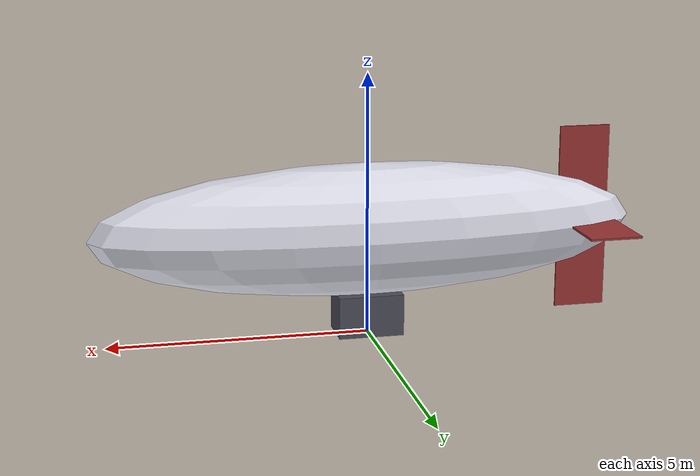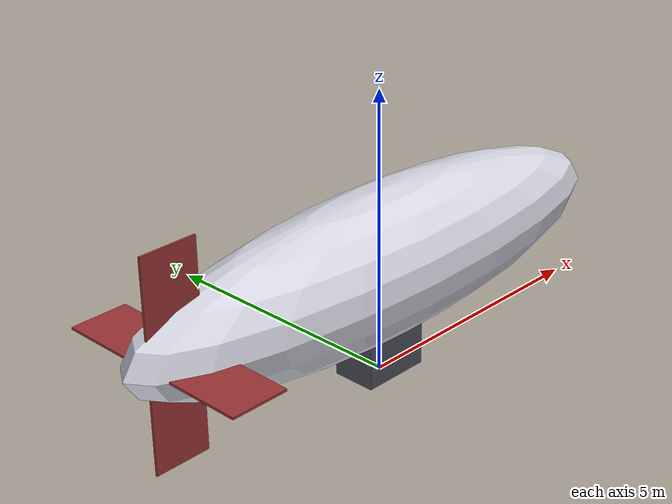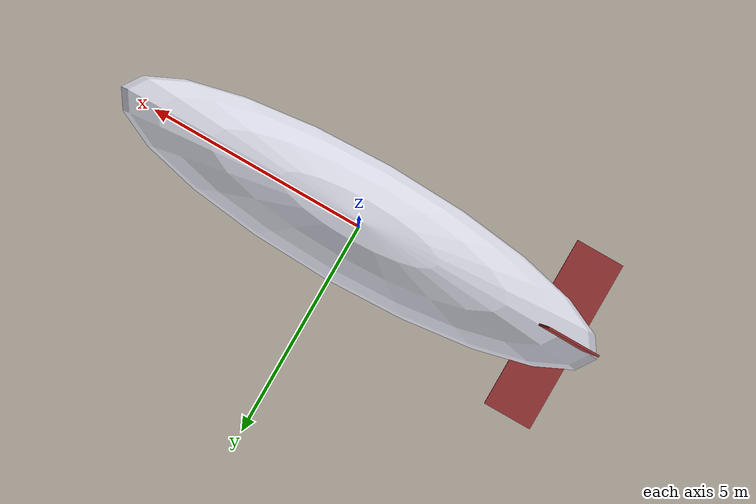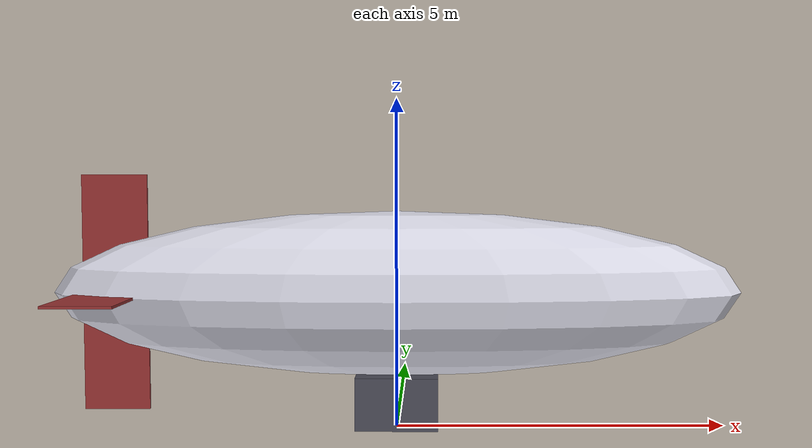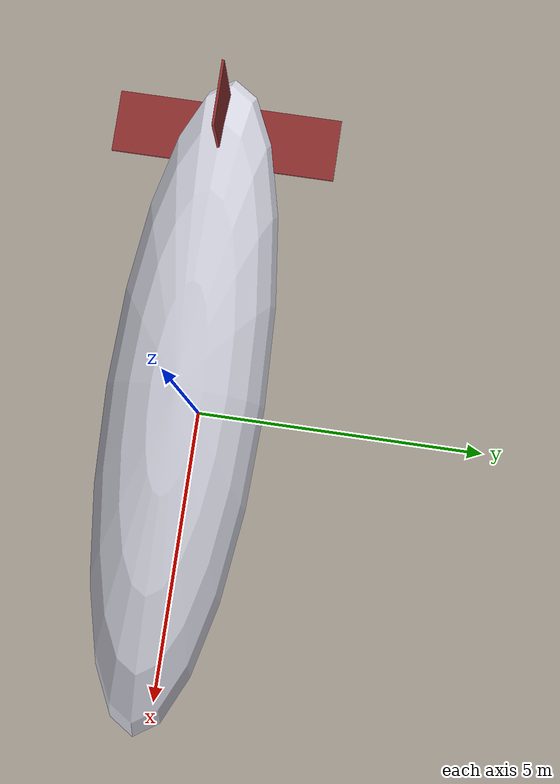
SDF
<?xml version="1.0" encoding="UTF-8"?>
<sdf version="1.10">
  <model name="airship_base">
    <self_collide>false</self_collide>
    <static>false</static>
    <link name="base_link">
      <pose>0 0 0 0 0 0</pose>
      <inertial>
        <!-- Hull as a solid ellipsoid plus gondola box, parallel-axis about
             the combined CoM; pods/props carry their own mass in the
             wrapper, on the CoM plane. -->
        <pose>0 0 0.8125 0 0 0</pose>
        <mass>48.0</mass>
        <inertia>
          <ixx>35.8425</ixx>
          <iyy>101.01</iyy>
          <izz>76.5075</izz>
          <ixy>0</ixy>
          <ixz>0</ixz>
          <iyz>0</iyz>
        </inertia>
      </inertial>
      <!-- Buoyancy volume 39.2 m^3 -->
      <collision name="hull_collision">
        <pose>0 0 2.05 0 0 0</pose>
        <geometry>
          <box>
            <size>9.8 2 2</size>
          </box>
        </geometry>
      </collision>
      <!-- Ground contact; buoyancy volume 0.8 m^3 -->
      <collision name="gondola_collision">
        <pose>0 0 0.4 0 0 0</pose>
        <geometry>
          <box>
            <size>1.25 0.8 0.8</size>
          </box>
        </geometry>
        <surface>
          <contact>
            <ode>
              <min_depth>0.001</min_depth>
              <max_vel>0</max_vel>
            </ode>
          </contact>
          <friction>
            <ode />
          </friction>
        </surface>
      </collision>
      <visual name="hull_visual">
        <pose>0 0 2.05 0 0 0</pose>
        <geometry>
          <ellipsoid>
            <radii>5.25 1.25 1.25</radii>
          </ellipsoid>
        </geometry>
        <material>
          <ambient>0.85 0.85 0.9 1</ambient>
          <diffuse>0.85 0.85 0.9 1</diffuse>
          <specular>0.3 0.3 0.3 1</specular>
        </material>
      </visual>
      <visual name="gondola_visual">
        <pose>0 0 0.4 0 0 0</pose>
        <geometry>
          <box>
            <size>1.25 0.8 0.8</size>
          </box>
        </geometry>
        <material>
          <ambient>0.3 0.3 0.35 1</ambient>
          <diffuse>0.3 0.3 0.35 1</diffuse>
          <specular>0.2 0.2 0.2 1</specular>
        </material>
      </visual>
      <!-- Cruciform tail, visual only: no collision and no lift-drag, so it
           adds no weathercock stiffness, in the _aero variant either -->
      <visual name="fin_horizontal_visual">
        <pose>-4.3 0 2.05 0 0 0</pose>
        <geometry>
          <box>
            <size>1.0 3.6 0.04</size>
          </box>
        </geometry>
        <material>
          <ambient>0.6 0.2 0.2 1</ambient>
          <diffuse>0.6 0.2 0.2 1</diffuse>
        </material>
      </visual>
      <visual name="fin_vertical_visual">
        <pose>-4.3 0 2.05 0 0 0</pose>
        <geometry>
          <box>
            <size>1.0 0.04 3.6</size>
          </box>
        </geometry>
        <material>
          <ambient>0.6 0.2 0.2 1</ambient>
          <diffuse>0.6 0.2 0.2 1</diffuse>
        </material>
      </visual>
      <sensor name="air_pressure_sensor" type="air_pressure">
        <gz_frame_id>base_link</gz_frame_id>
        <always_on>1</always_on>
        <update_rate>50</update_rate>
        <air_pressure>
          <!-- Noise modeled after BMP390 -->
          <pressure>
            <noise type="gaussian">
              <mean>0</mean>
              <stddev>3</stddev>
            </noise>
          </pressure>
        </air_pressure>
      </sensor>
      <sensor name="magnetometer_sensor" type="magnetometer">
        <gz_frame_id>base_link</gz_frame_id>
        <always_on>1</always_on>
        <update_rate>100</update_rate>
        <magnetometer>
          <!-- TODO: update to fix units and coordinate system when we move past Harmonic -->
          <!-- See https://github.com/gazebosim/gz-sim/pull/2460 -->
          <!-- 3mgauss RMS: NOTE: noise is in tesla but sensor reports data in gauss -->
          <!-- Noise modeled after IIS2MDC -->
          <x>
            <noise type="gaussian">
              <stddev>0.0001</stddev>
            </noise>
          </x>
          <y>
            <noise type="gaussian">
              <stddev>0.0001</stddev>
            </noise>
          </y>
          <z>
            <noise type="gaussian">
              <stddev>0.0001</stddev>
            </noise>
          </z>
        </magnetometer>
      </sensor>
      <sensor name="imu_sensor" type="imu">
        <gz_frame_id>base_link</gz_frame_id>
        <always_on>1</always_on>
        <update_rate>250</update_rate>
        <imu>
          <angular_velocity>
            <!-- Noise modeled after IIM42653, 0.05 deg/s in rad/s -->
            <x>
              <noise type="gaussian">
                <mean>0.0</mean>
                <stddev>0.0008726646</stddev>
              </noise>
            </x>
            <y>
              <noise type="gaussian">
                <mean>0.0</mean>
                <stddev>0.0008726646</stddev>
              </noise>
            </y>
            <z>
              <noise type="gaussian">
                <mean>0.0</mean>
                <stddev>0.0008726646</stddev>
              </noise>
            </z>
          </angular_velocity>
          <linear_acceleration>
            <!-- Noise modeled after IIM42653, 0.65/0.70 mg-rms in m/s^2 -->
            <x>
              <noise type="gaussian">
                <mean>0.0</mean>
                <stddev>0.00637</stddev>
              </noise>
            </x>
            <y>
              <noise type="gaussian">
                <mean>0.0</mean>
                <stddev>0.00637</stddev>
              </noise>
            </y>
            <z>
              <noise type="gaussian">
                <mean>0.0</mean>
                <stddev>0.00686</stddev>
              </noise>
            </z>
          </linear_acceleration>
        </imu>
      </sensor>
      <sensor name="navsat_sensor" type="navsat">
        <gz_frame_id>base_link</gz_frame_id>
        <always_on>1</always_on>
        <update_rate>30</update_rate>
      </sensor>
    </link>
  </model>
</sdf>
